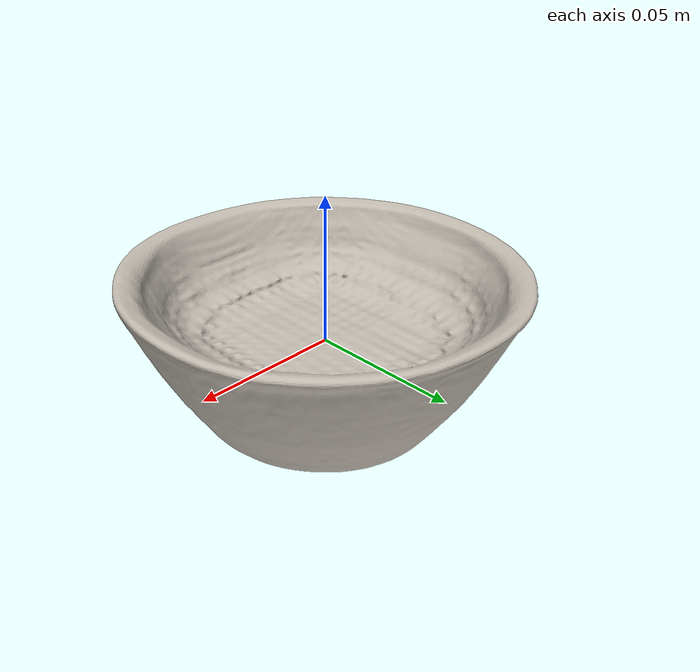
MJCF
<mujoco model="bowl_7">
  <asset>
    <texture file="/home/abhiram03/Desktop/mimicgen/robosuite-kitchen/robosuite/models/assets/textures/ceramic.png" name="tex-bowl_7" type="2d"/>
    <material name="bowl_7" reflectance="0.5" texrepeat="1 1" texture="tex-bowl_7" texuniform="false"/>
    <mesh file="visual/model_normalized_0.obj" name="model_normalized_0_vis" scale="0.13 0.13 0.13" refquat="1.0 0.0 0.0 0.0"/>
    <mesh file="collision/model_normalized_collision_13.obj" name="model_normalized_collision_13._coll" scale="0.13 0.13 0.13" refquat="1.0 0.0 0.0 0.0"/>
    <mesh file="collision/model_normalized_collision_15.obj" name="model_normalized_collision_15._coll" scale="0.13 0.13 0.13" refquat="1.0 0.0 0.0 0.0"/>
    <mesh file="collision/model_normalized_collision_10.obj" name="model_normalized_collision_10._coll" scale="0.13 0.13 0.13" refquat="1.0 0.0 0.0 0.0"/>
    <mesh file="collision/model_normalized_collision_26.obj" name="model_normalized_collision_26._coll" scale="0.13 0.13 0.13" refquat="1.0 0.0 0.0 0.0"/>
    <mesh file="collision/model_normalized_collision_25.obj" name="model_normalized_collision_25._coll" scale="0.13 0.13 0.13" refquat="1.0 0.0 0.0 0.0"/>
    <mesh file="collision/model_normalized_collision_5.obj" name="model_normalized_collision_5._coll" scale="0.13 0.13 0.13" refquat="1.0 0.0 0.0 0.0"/>
    <mesh file="collision/model_normalized_collision_31.obj" name="model_normalized_collision_31._coll" scale="0.13 0.13 0.13" refquat="1.0 0.0 0.0 0.0"/>
    <mesh file="collision/model_normalized_collision_3.obj" name="model_normalized_collision_3._coll" scale="0.13 0.13 0.13" refquat="1.0 0.0 0.0 0.0"/>
    <mesh file="collision/model_normalized_collision_14.obj" name="model_normalized_collision_14._coll" scale="0.13 0.13 0.13" refquat="1.0 0.0 0.0 0.0"/>
    <mesh file="collision/model_normalized_collision_28.obj" name="model_normalized_collision_28._coll" scale="0.13 0.13 0.13" refquat="1.0 0.0 0.0 0.0"/>
    <mesh file="collision/model_normalized_collision_11.obj" name="model_normalized_collision_11._coll" scale="0.13 0.13 0.13" refquat="1.0 0.0 0.0 0.0"/>
    <mesh file="collision/model_normalized_collision_29.obj" name="model_normalized_collision_29._coll" scale="0.13 0.13 0.13" refquat="1.0 0.0 0.0 0.0"/>
    <mesh file="collision/model_normalized_collision_24.obj" name="model_normalized_collision_24._coll" scale="0.13 0.13 0.13" refquat="1.0 0.0 0.0 0.0"/>
    <mesh file="collision/model_normalized_collision_1.obj" name="model_normalized_collision_1._coll" scale="0.13 0.13 0.13" refquat="1.0 0.0 0.0 0.0"/>
    <mesh file="collision/model_normalized_collision_0.obj" name="model_normalized_collision_0._coll" scale="0.13 0.13 0.13" refquat="1.0 0.0 0.0 0.0"/>
    <mesh file="collision/model_normalized_collision_27.obj" name="model_normalized_collision_27._coll" scale="0.13 0.13 0.13" refquat="1.0 0.0 0.0 0.0"/>
    <mesh file="collision/model_normalized_collision_9.obj" name="model_normalized_collision_9._coll" scale="0.13 0.13 0.13" refquat="1.0 0.0 0.0 0.0"/>
    <mesh file="collision/model_normalized_collision_19.obj" name="model_normalized_collision_19._coll" scale="0.13 0.13 0.13" refquat="1.0 0.0 0.0 0.0"/>
    <mesh file="collision/model_normalized_collision_21.obj" name="model_normalized_collision_21._coll" scale="0.13 0.13 0.13" refquat="1.0 0.0 0.0 0.0"/>
    <mesh file="collision/model_normalized_collision_30.obj" name="model_normalized_collision_30._coll" scale="0.13 0.13 0.13" refquat="1.0 0.0 0.0 0.0"/>
    <mesh file="collision/model_normalized_collision_20.obj" name="model_normalized_collision_20._coll" scale="0.13 0.13 0.13" refquat="1.0 0.0 0.0 0.0"/>
    <mesh file="collision/model_normalized_collision_2.obj" name="model_normalized_collision_2._coll" scale="0.13 0.13 0.13" refquat="1.0 0.0 0.0 0.0"/>
    <mesh file="collision/model_normalized_collision_7.obj" name="model_normalized_collision_7._coll" scale="0.13 0.13 0.13" refquat="1.0 0.0 0.0 0.0"/>
    <mesh file="collision/model_normalized_collision_22.obj" name="model_normalized_collision_22._coll" scale="0.13 0.13 0.13" refquat="1.0 0.0 0.0 0.0"/>
    <mesh file="collision/model_normalized_collision_16.obj" name="model_normalized_collision_16._coll" scale="0.13 0.13 0.13" refquat="1.0 0.0 0.0 0.0"/>
    <mesh file="collision/model_normalized_collision_8.obj" name="model_normalized_collision_8._coll" scale="0.13 0.13 0.13" refquat="1.0 0.0 0.0 0.0"/>
    <mesh file="collision/model_normalized_collision_6.obj" name="model_normalized_collision_6._coll" scale="0.13 0.13 0.13" refquat="1.0 0.0 0.0 0.0"/>
    <mesh file="collision/model_normalized_collision_18.obj" name="model_normalized_collision_18._coll" scale="0.13 0.13 0.13" refquat="1.0 0.0 0.0 0.0"/>
    <mesh file="collision/model_normalized_collision_17.obj" name="model_normalized_collision_17._coll" scale="0.13 0.13 0.13" refquat="1.0 0.0 0.0 0.0"/>
    <mesh file="collision/model_normalized_collision_12.obj" name="model_normalized_collision_12._coll" scale="0.13 0.13 0.13" refquat="1.0 0.0 0.0 0.0"/>
    <mesh file="collision/model_normalized_collision_4.obj" name="model_normalized_collision_4._coll" scale="0.13 0.13 0.13" refquat="1.0 0.0 0.0 0.0"/>
    <mesh file="collision/model_normalized_collision_23.obj" name="model_normalized_collision_23._coll" scale="0.13 0.13 0.13" refquat="1.0 0.0 0.0 0.0"/>
    <texture type="2d" name="a84b04d933cb_bowl__3d_asset_0_gl_texture_kd" file="visual/a84b04d933cb_bowl__3d_asset_0_gl_texture_kd.png"/>
    <material name="Material_0" texture="a84b04d933cb_bowl__3d_asset_0_gl_texture_kd" specular="0.5" shininess="0.5"/>
  </asset>
  <default>
    <default class="region">
      <geom group="1" conaffinity="0" contype="0" rgba="0 1 0 0"/>
    </default>
  </default>
  <worldbody>
    <body>
      <body name="object">
        <geom solimp="0.998 0.998 0.001" solref="0.001 1" density="100" friction="0.95 0.3 0.1" type="mesh" mesh="model_normalized_0_vis" conaffinity="0" contype="0" group="1" material="Material_0"/>
        <geom solimp="0.998 0.998 0.001" solref="0.001 1" density="100" friction="0.95 0.3 0.1" type="mesh" mesh="model_normalized_collision_13._coll" group="0" rgba="0.8 0.8 0.8 0.0"/>
        <geom solimp="0.998 0.998 0.001" solref="0.001 1" density="100" friction="0.95 0.3 0.1" type="mesh" mesh="model_normalized_collision_15._coll" group="0" rgba="0.8 0.8 0.8 0.0"/>
        <geom solimp="0.998 0.998 0.001" solref="0.001 1" density="100" friction="0.95 0.3 0.1" type="mesh" mesh="model_normalized_collision_10._coll" group="0" rgba="0.8 0.8 0.8 0.0"/>
        <geom solimp="0.998 0.998 0.001" solref="0.001 1" density="100" friction="0.95 0.3 0.1" type="mesh" mesh="model_normalized_collision_26._coll" group="0" rgba="0.8 0.8 0.8 0.0"/>
        <geom solimp="0.998 0.998 0.001" solref="0.001 1" density="100" friction="0.95 0.3 0.1" type="mesh" mesh="model_normalized_collision_25._coll" group="0" rgba="0.8 0.8 0.8 0.0"/>
        <geom solimp="0.998 0.998 0.001" solref="0.001 1" density="100" friction="0.95 0.3 0.1" type="mesh" mesh="model_normalized_collision_5._coll" group="0" rgba="0.8 0.8 0.8 0.0"/>
        <geom solimp="0.998 0.998 0.001" solref="0.001 1" density="100" friction="0.95 0.3 0.1" type="mesh" mesh="model_normalized_collision_31._coll" group="0" rgba="0.8 0.8 0.8 0.0"/>
        <geom solimp="0.998 0.998 0.001" solref="0.001 1" density="100" friction="0.95 0.3 0.1" type="mesh" mesh="model_normalized_collision_3._coll" group="0" rgba="0.8 0.8 0.8 0.0"/>
        <geom solimp="0.998 0.998 0.001" solref="0.001 1" density="100" friction="0.95 0.3 0.1" type="mesh" mesh="model_normalized_collision_14._coll" group="0" rgba="0.8 0.8 0.8 0.0"/>
        <geom solimp="0.998 0.998 0.001" solref="0.001 1" density="100" friction="0.95 0.3 0.1" type="mesh" mesh="model_normalized_collision_28._coll" group="0" rgba="0.8 0.8 0.8 0.0"/>
        <geom solimp="0.998 0.998 0.001" solref="0.001 1" density="100" friction="0.95 0.3 0.1" type="mesh" mesh="model_normalized_collision_11._coll" group="0" rgba="0.8 0.8 0.8 0.0"/>
        <geom solimp="0.998 0.998 0.001" solref="0.001 1" density="100" friction="0.95 0.3 0.1" type="mesh" mesh="model_normalized_collision_29._coll" group="0" rgba="0.8 0.8 0.8 0.0"/>
        <geom solimp="0.998 0.998 0.001" solref="0.001 1" density="100" friction="0.95 0.3 0.1" type="mesh" mesh="model_normalized_collision_24._coll" group="0" rgba="0.8 0.8 0.8 0.0"/>
        <geom solimp="0.998 0.998 0.001" solref="0.001 1" density="100" friction="0.95 0.3 0.1" type="mesh" mesh="model_normalized_collision_1._coll" group="0" rgba="0.8 0.8 0.8 0.0"/>
        <geom solimp="0.998 0.998 0.001" solref="0.001 1" density="100" friction="0.95 0.3 0.1" type="mesh" mesh="model_normalized_collision_0._coll" group="0" rgba="0.8 0.8 0.8 0.0"/>
        <geom solimp="0.998 0.998 0.001" solref="0.001 1" density="100" friction="0.95 0.3 0.1" type="mesh" mesh="model_normalized_collision_27._coll" group="0" rgba="0.8 0.8 0.8 0.0"/>
        <geom solimp="0.998 0.998 0.001" solref="0.001 1" density="100" friction="0.95 0.3 0.1" type="mesh" mesh="model_normalized_collision_9._coll" group="0" rgba="0.8 0.8 0.8 0.0"/>
        <geom solimp="0.998 0.998 0.001" solref="0.001 1" density="100" friction="0.95 0.3 0.1" type="mesh" mesh="model_normalized_collision_19._coll" group="0" rgba="0.8 0.8 0.8 0.0"/>
        <geom solimp="0.998 0.998 0.001" solref="0.001 1" density="100" friction="0.95 0.3 0.1" type="mesh" mesh="model_normalized_collision_21._coll" group="0" rgba="0.8 0.8 0.8 0.0"/>
        <geom solimp="0.998 0.998 0.001" solref="0.001 1" density="100" friction="0.95 0.3 0.1" type="mesh" mesh="model_normalized_collision_30._coll" group="0" rgba="0.8 0.8 0.8 0.0"/>
        <geom solimp="0.998 0.998 0.001" solref="0.001 1" density="100" friction="0.95 0.3 0.1" type="mesh" mesh="model_normalized_collision_20._coll" group="0" rgba="0.8 0.8 0.8 0.0"/>
        <geom solimp="0.998 0.998 0.001" solref="0.001 1" density="100" friction="0.95 0.3 0.1" type="mesh" mesh="model_normalized_collision_2._coll" group="0" rgba="0.8 0.8 0.8 0.0"/>
        <geom solimp="0.998 0.998 0.001" solref="0.001 1" density="100" friction="0.95 0.3 0.1" type="mesh" mesh="model_normalized_collision_7._coll" group="0" rgba="0.8 0.8 0.8 0.0"/>
        <geom solimp="0.998 0.998 0.001" solref="0.001 1" density="100" friction="0.95 0.3 0.1" type="mesh" mesh="model_normalized_collision_22._coll" group="0" rgba="0.8 0.8 0.8 0.0"/>
        <geom solimp="0.998 0.998 0.001" solref="0.001 1" density="100" friction="0.95 0.3 0.1" type="mesh" mesh="model_normalized_collision_16._coll" group="0" rgba="0.8 0.8 0.8 0.0"/>
        <geom solimp="0.998 0.998 0.001" solref="0.001 1" density="100" friction="0.95 0.3 0.1" type="mesh" mesh="model_normalized_collision_8._coll" group="0" rgba="0.8 0.8 0.8 0.0"/>
        <geom solimp="0.998 0.998 0.001" solref="0.001 1" density="100" friction="0.95 0.3 0.1" type="mesh" mesh="model_normalized_collision_6._coll" group="0" rgba="0.8 0.8 0.8 0.0"/>
        <geom solimp="0.998 0.998 0.001" solref="0.001 1" density="100" friction="0.95 0.3 0.1" type="mesh" mesh="model_normalized_collision_18._coll" group="0" rgba="0.8 0.8 0.8 0.0"/>
        <geom solimp="0.998 0.998 0.001" solref="0.001 1" density="100" friction="0.95 0.3 0.1" type="mesh" mesh="model_normalized_collision_17._coll" group="0" rgba="0.8 0.8 0.8 0.0"/>
        <geom solimp="0.998 0.998 0.001" solref="0.001 1" density="100" friction="0.95 0.3 0.1" type="mesh" mesh="model_normalized_collision_12._coll" group="0" rgba="0.8 0.8 0.8 0.0"/>
        <geom solimp="0.998 0.998 0.001" solref="0.001 1" density="100" friction="0.95 0.3 0.1" type="mesh" mesh="model_normalized_collision_4._coll" group="0" rgba="0.8 0.8 0.8 0.0"/>
        <geom solimp="0.998 0.998 0.001" solref="0.001 1" density="100" friction="0.95 0.3 0.1" type="mesh" mesh="model_normalized_collision_23._coll" group="0" rgba="0.8 0.8 0.8 0.0"/>
        <geom class="region" name="reg_bbox" type="box" pos="0.00016269370000000284 -6.500000032660935e-10 6.892795000000042e-05" size="0.0661475438 0.06598485010000002 0.028560606750000002"/>
      </body>
    </body>
  </worldbody>
</mujoco>
